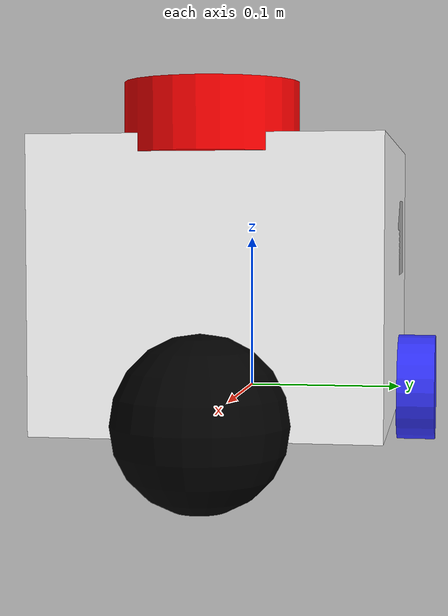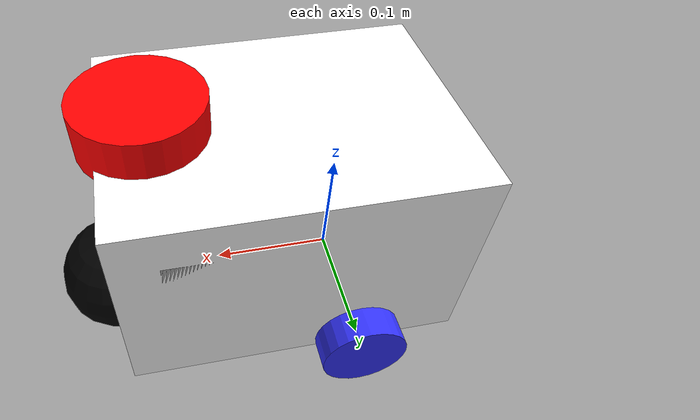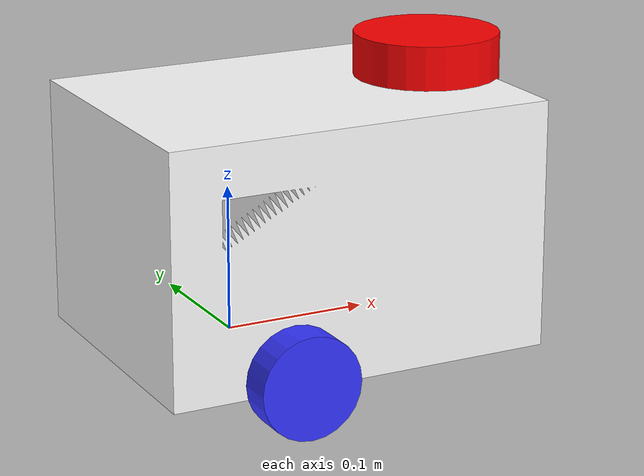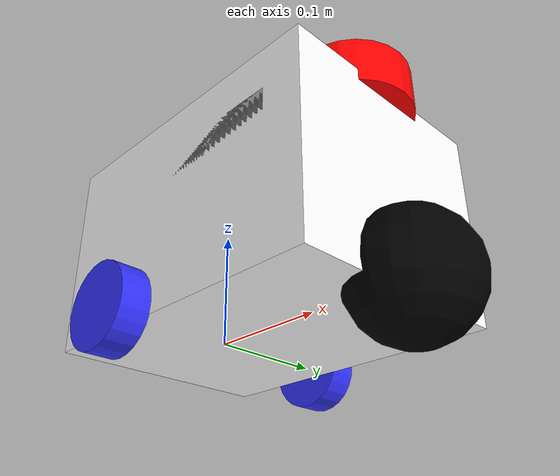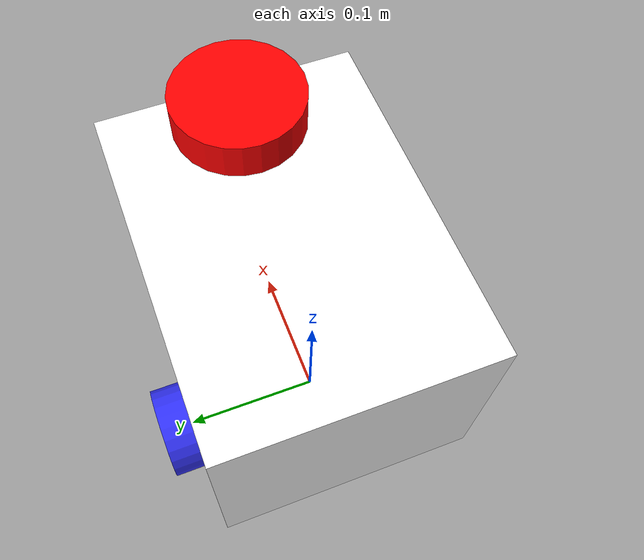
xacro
<?xml version="1.0"?>
<robot xmlns:xacro="http://www.ros.org/wiki/xacro" name="robot">

    <xacro:arg name="use_ros2_control" default="true" />
    <xacro:arg name="sim_mode" default="false" />

    <xacro:include filename="robot_core.xacro" />

    <xacro:if value="$(arg use_ros2_control)">
        <xacro:include filename="ros2_control.xacro" />
    </xacro:if>

    <xacro:unless value="$(arg use_ros2_control)">
        <xacro:include filename="gazebo_control.xacro" />
    </xacro:unless>

    <xacro:include filename="lidar.xacro" />
    <xacro:include filename="imu.xacro" />

</robot>

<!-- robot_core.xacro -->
<robot xmlns:xacro="http://www.ros.org/wiki/xacro">

    <xacro:include filename="inertial_macros.xacro" />

     <material name="white">
        <color rgba="1 1 1 1"/>
    </material>

    <material name="orange">
        <color rgba="1 0.3 0.1 1 "/>
    </material>

    <material name="blue">
        <color rgba="0.2 0.2 1 1 " />
    </material>

    <material name="black">
        <color rgba="0 0 0 1" />
    </material>

    <material name="red">
        <color rgba="1 0 0 1" />
    </material>

    <!-- Base Link -->

    <link name="base_link" >
    </link>

      <!-- BASE_FOOTPRINT LINK -->

    <joint name="base_footprint_joint" type="fixed">
        <parent link="base_link"/>
        <child link="base_footprint"/>
        <origin xyz="0 0 0" rpy="0 0 0"/>
    </joint>

    <link name="base_footprint">
    </link>

    <!-- Chassis -->

    <joint name="chassis_joint" type="fixed">
        <parent link="base_link"/>
        <child link="chassis"/>
        <origin xyz="-0.05 0 0" />
    </joint>

    <link name="chassis">
        <visual>
            <origin xyz="0.10 0 0.075" />
            <geometry>
                <box size="0.27 0.2 0.17"/>
            </geometry>
            <material name="white"/>
        </visual>
        <collision>
            <origin xyz="0.10 0 0.075" />
            <geometry>
                <box size="0.27 0.2 0.17"/>
            </geometry>
        </collision>
        <xacro:inertial_box mass="0.5" x="0.27" y="0.2" z="0.17" >
            <origin xyz="0.10 0 0.075" rpy="0 0 0"/>
        </xacro:inertial_box>
    </link>

    <gazebo reference="chassis">
        <material>Gazebo/White</material>
    </gazebo>

    <!-- LEFT WHELL LINK -->
    <!--
        112 mm is the distance between the center of the wheel and the center of the chassis
        chassi is 200 mm long
        wheel is 25 mm long
        200/2 + 25/2 = 112 mm
    -->

    <joint name="left_wheel_joint" type="continuous">
        <parent link="base_link"/>
        <child link="left_wheel"/>
        <origin xyz="0 0.112 0" rpy="-${pi/2} 0 0"/>
        <axis xyz="0 0 1" />
    </joint>

    <link name="left_wheel">
        <visual>
            <geometry>
                <cylinder radius="0.035" length="0.025"/>
            </geometry>
            <material name="blue"/>
        </visual>
         <collision>
            <geometry>
                <cylinder radius="0.035" length="0.025"/>
            </geometry>
        </collision>
        <xacro:inertial_cylinder mass="0.1" length="0.025" radius="0.035" >
            <origin xyz="0 0 0" rpy="0 0 0"/>
        </xacro:inertial_cylinder>

    </link>

    <gazebo reference="left_wheel">
        <material>Gazebo/Blue</material>
    </gazebo>

    <!-- RIGHT WHELL LINK -->

    <joint name="right_wheel_joint" type="continuous">
        <parent link="base_link"/>
        <child link="right_wheel"/>
        <origin xyz="0 -0.112 0" rpy="${pi/2} 0 0"/>
        <axis xyz="0 0 -1" />
    </joint>

    <link name="right_wheel">
        <visual>
            <geometry>
                <cylinder radius="0.035" length="0.025"/>
            </geometry>
            <material name="blue"/>
        </visual>
        <collision>
            <geometry>
                <cylinder radius="0.035" length="0.025"/>
            </geometry>
        </collision>
        <xacro:inertial_cylinder mass="0.1" length="0.025" radius="0.035" >
            <origin xyz="0 0 0" rpy="0 0 0"/>
        </xacro:inertial_cylinder>

    </link>

    <gazebo reference="right_wheel">
        <material>Gazebo/Blue</material>
    </gazebo>

    <!-- CASTER WHELL LINK -->

    <joint name="caster_wheel_joint" type="fixed">
        <parent link="chassis"/>
        <child link="caster_wheel"/>
        <origin xyz="0.24 0 0" />
    </joint>

    <link name="caster_wheel">
        <visual>
            <geometry>
                <sphere radius="0.05" />
            </geometry>
            <material name="black"/>
        </visual>
        <collision>
            <geometry>
                <sphere radius="0.05" />
            </geometry>
        </collision>
        <xacro:inertial_sphere mass="0.1" radius="0.05" >
            <origin xyz="0 0 0" rpy="0 0 0"/>
        </xacro:inertial_sphere>

    </link>

    <gazebo reference="caster_wheel">
        <material>Gazebo/Black</material>
        <mu1 value="0.001"/>
        <mu2 value="0.001"/>
    </gazebo>

</robot>

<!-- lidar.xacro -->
<robot xmlns:xacro="http://www.ros.org/wiki/xacro">

    <joint name="laser_joint" type="fixed">
        <parent link="chassis" />
        <child link="laser_frame" />
        <origin xyz="0.2 0 0.17" rpy="0 0 0" />
    </joint>

    <link name="laser_frame">
        <visual>
            <geometry>
                <cylinder radius="0.05" length="0.04"/>
            </geometry>
            <material name="red"/>
        </visual>
        <collision>
            <geometry>
                <cylinder radius="0.05" length="0.04"/>
            </geometry>
        </collision>
        <xacro:inertial_cylinder mass="0.1" length="0.04" radius="0.05">
            <origin xyz="0 0 0" rpy="0 0 0"/>
        </xacro:inertial_cylinder>
    </link>

    <gazebo reference="laser_frame">
        <material>Gazebo/Red</material>

        <sensor name="laser" type="ray">
            <pose> 0 0 0 0 0 0 </pose>
            <visualize>true</visualize>
            <update_rate>10</update_rate>
            <ray>
                <scan>
                    <horizontal>
                        <samples>360</samples>
                        <min_angle>-3.14</min_angle>
                        <max_angle>3.14</max_angle>
                    </horizontal>
                </scan>
                <range>
                    <min>0.3</min>
                    <max>12</max>
                </range>
            </ray>
            <plugin name="laser_controller" filename="libgazebo_ros_ray_sensor.so">
                <ros>
                    <argument>~/out:=scan</argument>
                </ros>
                <output_type>sensor_msgs/LaserScan</output_type>
                <frame_name>laser_frame</frame_name>
            </plugin>
        </sensor>
    </gazebo>

</robot>

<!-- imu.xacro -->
<robot xmlns:xacro="http://www.ros.org/wiki/xacro">

    <joint name="imu_joint" type="fixed">
        <parent link="chassis" />
        <child link="imu_frame" />
        <origin xyz="0.1 0 0.10" rpy="0 0 0" />
    </joint>

    <link name="imu_frame">
        <visual>
            <geometry>
                <box size="0.2 0.2 0.05"/>
            </geometry>
        </visual>
        <collision>
            <geometry>
                <box size="0.2 0.2 0.05"/>
            </geometry>
        </collision>
        <inertial>
            <mass value="1e-5" />
            <origin xyz="0 0 0" rpy="0 0 0"/>
            <inertia ixx="1e-6" ixy="0" ixz="0" iyy="1e-6" iyz="0" izz="1e-6" />
        </inertial>
    </link>

    <gazebo reference="imu_frame">
        <gravity>true</gravity>
        <sensor name="imu_sensor" type="imu">
            <always_on>true</always_on>
            <update_rate>100</update_rate>
            <visualize>true</visualize>
            <topic>__default_topic__</topic>
            <plugin filename="libgazebo_ros_imu_sensor.so" name="imu_plugin">
                <topicName>imu</topicName>
                <bodyName>imu_frame</bodyName>
                <updateRateHZ>10.0</updateRateHZ>
                <gaussianNoise>0.0</gaussianNoise>
                <xyzOffset>0 0 0</xyzOffset>
                <rpyOffset>0 0 0</rpyOffset>
                <frameName>imu_frame</frameName>
                <initialOrientationAsReference>false</initialOrientationAsReference>
            </plugin>
            <pose>0 0 0 0 0 0</pose>
        </sensor>
    </gazebo>

</robot>
